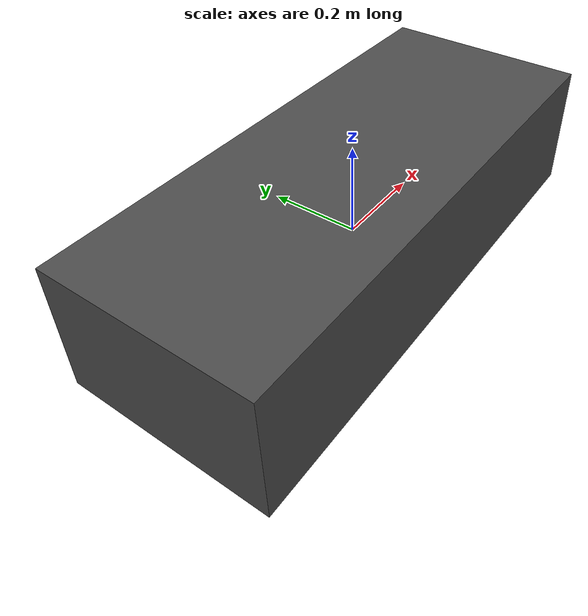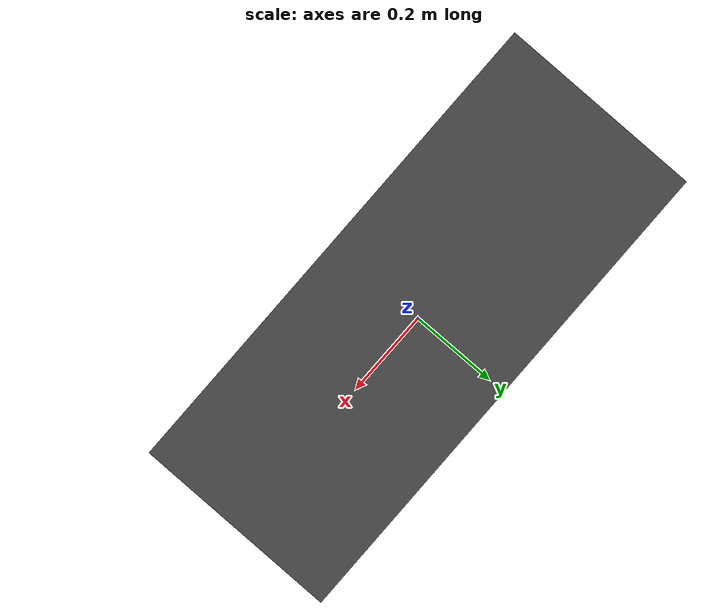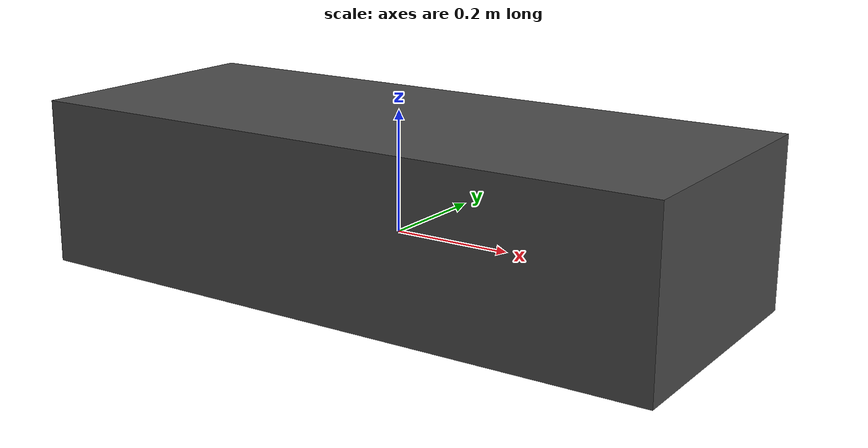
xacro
<?xml version="1.0"?>
<robot xmlns:xacro="http://www.ros.org/wiki/xacro" name="a2_jt128_sim">

  <material name="dark_grey">
    <color rgba="0.3 0.3 0.3 1.0"/>
  </material>
  <material name="blue">
    <color rgba="0.2 0.3 0.8 1.0"/>
  </material>

  <!-- ======== base_link ======== -->
  <!-- Simulation collision is intentionally simplified to avoid self-occluding -->
  <!-- the Gazebo ray sensor; real self-filter is still tested by synthetic/bag validation. -->
  <link name="base_link">
    <inertial>
      <origin xyz="0 0 0.05" rpy="0 0 0"/>
      <mass value="12.0"/>
      <inertia ixx="0.4" ixy="0" ixz="0" iyy="0.7" iyz="0" izz="0.6"/>
    </inertial>
    <visual>
      <origin xyz="0 0 0.05" rpy="0 0 0"/>
      <geometry>
        <box size="1.10 0.45 0.28"/>
      </geometry>
      <material name="dark_grey"/>
    </visual>
    <!-- Collision: lower body-only box, intentionally shorter/lower than -->
    <!-- the visual to prevent Gazebo ray sensor from self-occluding. -->
    <collision>
      <origin xyz="0 0 0.0" rpy="0 0 0"/>
      <geometry>
        <box size="1.00 0.38 0.12"/>
      </geometry>
    </collision>
  </link>

  <!-- ======== jt128_front_link ======== -->
  <joint name="jt128_front_joint" type="fixed">
    <origin xyz="0.33767 0.0 0.08134" rpy="1.57079632679 0.0 1.57079632679"/>
    <parent link="base_link"/>
    <child link="jt128_front_link"/>
  </joint>

  <link name="jt128_front_link">
    <inertial>
      <mass value="0.01"/>
      <inertia ixx="1e-6" ixy="0" ixz="0" iyy="1e-6" iyz="0" izz="1e-6"/>
    </inertial>
    <visual>
      <geometry>
        <cylinder radius="0.06" length="0.08"/>
      </geometry>
      <material name="blue"/>
    </visual>
    <collision>
      <geometry>
        <cylinder radius="0.06" length="0.08"/>
      </geometry>
    </collision>
  </link>

  <!-- ======== JT128 3D LiDAR Gazebo sensor ======== -->
  <gazebo reference="jt128_front_link">
    <sensor type="ray" name="jt128_lidar">
      <pose>0 0 0 0 0 0</pose>
      <visualize>true</visualize>
      <update_rate>10</update_rate>
      <ray>
        <scan>
          <horizontal>
            <samples>720</samples>
            <resolution>1</resolution>
            <min_angle>-1.5708</min_angle>
            <max_angle>1.5708</max_angle>
          </horizontal>
          <vertical>
            <samples>32</samples>
            <resolution>1</resolution>
            <min_angle>-0.35</min_angle>
            <max_angle>0.35</max_angle>
          </vertical>
        </scan>
        <range>
          <min>0.08</min>
          <max>12.0</max>
          <resolution>0.01</resolution>
        </range>
      </ray>
      <plugin name="gazebo_ros_jt128_controller" filename="libgazebo_ros_ray_sensor.so">
        <ros>
          <namespace>/</namespace>
          <remapping>~/out:=/jt128/front/points</remapping>
        </ros>
        <output_type>sensor_msgs/PointCloud2</output_type>
        <frame_name>jt128_front_link</frame_name>
      </plugin>
    </sensor>
  </gazebo>

</robot>
